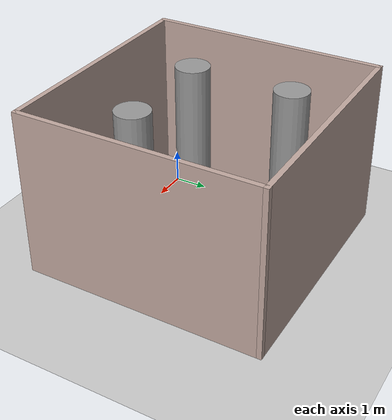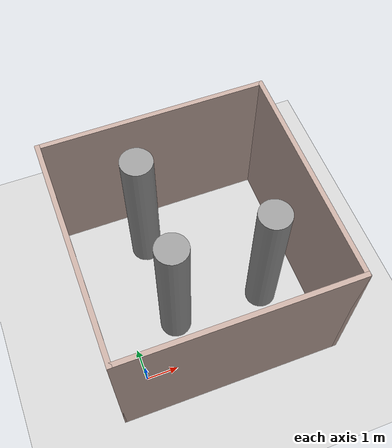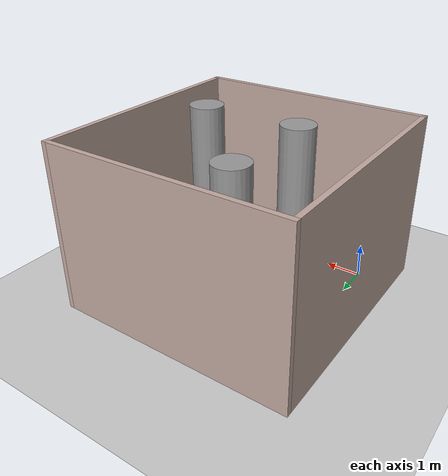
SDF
<sdf version="1.6">
 <world name="default">
  <model name="ground_plane">
   <static>1</static>
   <link name="link">
    <collision name="collision">
     <geometry><plane><normal>0 0 1</normal><size>100 100</size></plane></geometry>
     <surface>
      <contact><collide_bitmask>65535</collide_bitmask></contact>
      <friction><ode><mu>100</mu><mu2>50</mu2></ode></friction>
     </surface>
    </collision>
    <visual name="visual">
     <cast_shadows>0</cast_shadows>
     <geometry><plane><normal>0 0 1</normal><size>100 100</size></plane></geometry>
     <material>
      <script><uri>file://media/materials/scripts/gazebo.material</uri><name>Gazebo/Grey</name></script>
     </material>
    </visual>
   </link>
  </model>
  <light name="sun" type="directional">
   <pose>0 0 10 0 -0 0</pose>
   <diffuse>0.8 0.8 0.8 1</diffuse>
   <specular>0.2 0.2 0.2 1</specular>
   <attenuation>
    <range>1000</range>
    <constant>0.9</constant>
    <linear>0.01</linear>
    <quadratic>0.001</quadratic>
   </attenuation>
   <direction>-0.5 0.1 -0.9</direction>
  </light>
  <plugin name="ros_interface_plugin" filename="librotors_gazebo_ros_interface_plugin.so"/>
  <spherical_coordinates>
   <surface_model>EARTH_WGS84</surface_model>
   <latitude_deg>47.3667</latitude_deg>
   <longitude_deg>8.55</longitude_deg>
   <elevation>500</elevation>
   <heading_deg>0</heading_deg>
  </spherical_coordinates>
  <physics name="default_physics" default="0" type="ode">
   <ode>
    <solver>
     <type>quick</type>
     <iters>1000</iters>
     <sor>1.3</sor>
     <use_dynamic_moi_rescaling>0</use_dynamic_moi_rescaling>
    </solver>
    <constraints>
     <cfm>0</cfm>
     <erp>0.2</erp>
     <contact_max_correcting_vel>100</contact_max_correcting_vel>
     <contact_surface_layer>0.001</contact_surface_layer>
    </constraints>
   </ode>
   <max_step_size>0.001</max_step_size>
   <real_time_factor>1</real_time_factor>
   <real_time_update_rate>1000</real_time_update_rate>
  </physics>
  <gravity>0 0 -9.8</gravity>
  <magnetic_field>6e-06 2.3e-05 -4.2e-05</magnetic_field>
  <atmosphere type="adiabatic"/>
  <scene><ambient>0.4 0.4 0.4 1</ambient><background>0.7 0.7 0.7 1</background><shadows>1</shadows></scene>
  <audio><device>default</device></audio>
  <model name="arenaVolo">
   <pose>2.5 2.5 0 0 -0 0</pose>
   <link name="Wall_23">
    <collision name="Wall_23_Collision">
     <geometry><box><size>7.15 0.15 5</size></box></geometry>
     <pose>0 0 2.5 0 -0 0</pose>
    </collision>
    <visual name="Wall_23_Visual">
     <pose>0 0 2.5 0 -0 0</pose>
     <geometry><box><size>7.15 0.15 5</size></box></geometry>
     <material>
      <script><uri>file://media/materials/scripts/gazebo.material</uri><name>Gazebo/Grey</name></script>
      <ambient>0.760784 0.662745 0.627451 1</ambient>
     </material>
     <meta><layer>0</layer></meta>
    </visual>
    <pose>0 3.5 0 0 -0 3.14159</pose>
   </link>
   <link name="Wall_24">
    <collision name="Wall_24_Collision">
     <geometry><box><size>7.15 0.15 5</size></box></geometry>
     <pose>0 0 2.5 0 -0 0</pose>
    </collision>
    <visual name="Wall_24_Visual">
     <pose>0 0 2.5 0 -0 0</pose>
     <geometry><box><size>7.15 0.15 5</size></box></geometry>
     <material>
      <script><uri>file://media/materials/scripts/gazebo.material</uri><name>Gazebo/Grey</name></script>
      <ambient>0.760784 0.662745 0.627451 1</ambient>
     </material>
     <meta><layer>0</layer></meta>
    </visual>
    <pose>-3.5 -0 0 0 -0 -1.5708</pose>
   </link>
   <link name="Wall_25">
    <collision name="Wall_25_Collision">
     <geometry><box><size>7.15 0.15 5</size></box></geometry>
     <pose>0 0 2.5 0 -0 0</pose>
    </collision>
    <visual name="Wall_25_Visual">
     <pose>0 0 2.5 0 -0 0</pose>
     <geometry><box><size>7.15 0.15 5</size></box></geometry>
     <material>
      <script><uri>file://media/materials/scripts/gazebo.material</uri><name>Gazebo/Grey</name></script>
      <ambient>0.760784 0.662745 0.627451 1</ambient>
     </material>
     <meta><layer>0</layer></meta>
    </visual>
    <pose>0 -3.5 0 0 -0 0</pose>
   </link>
   <link name="Wall_26">
    <collision name="Wall_26_Collision">
     <geometry><box><size>7.15 0.15 5</size></box></geometry>
     <pose>0 0 2.5 0 -0 0</pose>
    </collision>
    <visual name="Wall_26_Visual">
     <pose>0 0 2.5 0 -0 0</pose>
     <geometry><box><size>7.15 0.15 5</size></box></geometry>
     <material>
      <script><uri>file://media/materials/scripts/gazebo.material</uri><name>Gazebo/Grey</name></script>
      <ambient>0.760784 0.662745 0.627451 1</ambient>
     </material>
     <meta><layer>0</layer></meta>
    </visual>
    <pose>3.5 -0 0 0 -0 1.5708</pose>
   </link>
   <static>1</static>
  </model>
  <model name="arena_cylinder">
   <link name="link_clone_clone">
    <inertial>
     <mass>1</mass>
     <inertia><ixx>0.145833</ixx><ixy>0</ixy><ixz>0</ixz><iyy>0.145833</iyy><iyz>0</iyz><izz>0.125</izz></inertia>
     <pose>0 0 2 0 -0 0</pose>
    </inertial>
    <pose>0.63189 0.124422 0 0 -0 0</pose>
    <visual name="visual">
     <geometry><cylinder><radius>0.5</radius><length>5</length></cylinder></geometry>
     <material>
      <script><name>Gazebo/Grey</name><uri>file://media/materials/scripts/gazebo.material</uri></script>
      <shader type="vertex"><normal_map>__default__</normal_map></shader>
      <ambient>0.3 0.3 0.3 1</ambient>
      <diffuse>0.7 0.7 0.7 1</diffuse>
      <specular>0.01 0.01 0.01 1</specular>
      <emissive>0 0 0 1</emissive>
     </material>
     <pose>0 0 2 0 -0 0</pose>
    </visual>
    <collision name="collision">
     <pose>0 0 2 0 -0 0</pose>
     <geometry><cylinder><radius>0.5</radius><length>5</length></cylinder></geometry>
     <surface>
      <friction>
       <ode><mu>1</mu><mu2>1</mu2><fdir1>0 0 0</fdir1><slip1>0</slip1><slip2>0</slip2></ode>
       <torsional>
        <coefficient>1</coefficient>
        <patch_radius>0</patch_radius>
        <surface_radius>0</surface_radius>
        <use_patch_radius>1</use_patch_radius>
        <ode><slip>0</slip></ode>
       </torsional>
      </friction>
      <bounce><restitution_coefficient>0</restitution_coefficient><threshold>1e+06</threshold></bounce>
      <contact>
       <collide_without_contact>0</collide_without_contact>
       <collide_without_contact_bitmask>1</collide_without_contact_bitmask>
       <collide_bitmask>1</collide_bitmask>
       <ode>
        <soft_cfm>0</soft_cfm>
        <soft_erp>0.2</soft_erp>
        <kp>1e+13</kp>
        <kd>1</kd>
        <max_vel>0.01</max_vel>
        <min_depth>0</min_depth>
       </ode>
       <bullet>
        <split_impulse>1</split_impulse>
        <split_impulse_penetration_threshold>-0.01</split_impulse_penetration_threshold>
        <soft_cfm>0</soft_cfm>
        <soft_erp>0.2</soft_erp>
        <kp>1e+13</kp>
        <kd>1</kd>
       </bullet>
      </contact>
     </surface>
    </collision>
   </link>
   <static>0</static>
   <pose>0.874756 4.38621 0.5 0 -0 0</pose>
  </model>
  <model name="arena_cylinder_1">
   <link name="link_clone_clone">
    <inertial>
     <mass>1</mass>
     <inertia><ixx>0.145833</ixx><ixy>0</ixy><ixz>0</ixz><iyy>0.145833</iyy><iyz>0</iyz><izz>0.125</izz></inertia>
     <pose>0 0 2 0 -0 0</pose>
    </inertial>
    <pose>-2.36399 -2.44511 0 0 -0 0</pose>
    <visual name="visual">
     <geometry><cylinder><radius>0.5</radius><length>5</length></cylinder></geometry>
     <material>
      <script><name>Gazebo/Grey</name><uri>file://media/materials/scripts/gazebo.material</uri></script>
      <shader type="vertex"><normal_map>__default__</normal_map></shader>
      <ambient>0.3 0.3 0.3 1</ambient>
      <diffuse>0.7 0.7 0.7 1</diffuse>
      <specular>0.01 0.01 0.01 1</specular>
      <emissive>0 0 0 1</emissive>
     </material>
     <pose>0 0 2 0 -0 0</pose>
    </visual>
    <collision name="collision">
     <pose>0 0 2 0 -0 0</pose>
     <geometry><cylinder><radius>0.5</radius><length>5</length></cylinder></geometry>
     <surface>
      <friction>
       <ode><mu>1</mu><mu2>1</mu2><fdir1>0 0 0</fdir1><slip1>0</slip1><slip2>0</slip2></ode>
       <torsional>
        <coefficient>1</coefficient>
        <patch_radius>0</patch_radius>
        <surface_radius>0</surface_radius>
        <use_patch_radius>1</use_patch_radius>
        <ode><slip>0</slip></ode>
       </torsional>
      </friction>
      <bounce><restitution_coefficient>0</restitution_coefficient><threshold>1e+06</threshold></bounce>
      <contact>
       <collide_without_contact>0</collide_without_contact>
       <collide_without_contact_bitmask>1</collide_without_contact_bitmask>
       <collide_bitmask>1</collide_bitmask>
       <ode>
        <soft_cfm>0</soft_cfm>
        <soft_erp>0.2</soft_erp>
        <kp>1e+13</kp>
        <kd>1</kd>
        <max_vel>0.01</max_vel>
        <min_depth>0</min_depth>
       </ode>
       <bullet>
        <split_impulse>1</split_impulse>
        <split_impulse_penetration_threshold>-0.01</split_impulse_penetration_threshold>
        <soft_cfm>0</soft_cfm>
        <soft_erp>0.2</soft_erp>
        <kp>1e+13</kp>
        <kd>1</kd>
       </bullet>
      </contact>
     </surface>
    </collision>
   </link>
   <static>0</static>
   <pose>3.86271 3.94109 0.499991 0 -0 0</pose>
  </model>
  <model name="arena_cylinder_0">
   <link name="link_clone_clone">
    <inertial>
     <mass>1</mass>
     <inertia><ixx>0.145833</ixx><ixy>0</ixy><ixz>0</ixz><iyy>0.145833</iyy><iyz>0</iyz><izz>0.125</izz></inertia>
     <pose>0 0 2 0 -0 0</pose>
    </inertial>
    <pose>0.636642 -0.105448 0 0 -0 0</pose>
    <visual name="visual">
     <geometry><cylinder><radius>0.5</radius><length>5</length></cylinder></geometry>
     <material>
      <script><name>Gazebo/Grey</name><uri>file://media/materials/scripts/gazebo.material</uri></script>
      <shader type="vertex"><normal_map>__default__</normal_map></shader>
      <ambient>0.3 0.3 0.3 1</ambient>
      <diffuse>0.7 0.7 0.7 1</diffuse>
      <specular>0.01 0.01 0.01 1</specular>
      <emissive>0 0 0 1</emissive>
     </material>
     <pose>0 0 2 0 -0 0</pose>
    </visual>
    <collision name="collision">
     <pose>0 0 2 0 -0 0</pose>
     <geometry><cylinder><radius>0.5</radius><length>5</length></cylinder></geometry>
     <surface>
      <friction>
       <ode><mu>1</mu><mu2>1</mu2><fdir1>0 0 0</fdir1><slip1>0</slip1><slip2>0</slip2></ode>
       <torsional>
        <coefficient>1</coefficient>
        <patch_radius>0</patch_radius>
        <surface_radius>0</surface_radius>
        <use_patch_radius>1</use_patch_radius>
        <ode><slip>0</slip></ode>
       </torsional>
      </friction>
      <bounce><restitution_coefficient>0</restitution_coefficient><threshold>1e+06</threshold></bounce>
      <contact>
       <collide_without_contact>0</collide_without_contact>
       <collide_without_contact_bitmask>1</collide_without_contact_bitmask>
       <collide_bitmask>1</collide_bitmask>
       <ode>
        <soft_cfm>0</soft_cfm>
        <soft_erp>0.2</soft_erp>
        <kp>1e+13</kp>
        <kd>1</kd>
        <max_vel>0.01</max_vel>
        <min_depth>0</min_depth>
       </ode>
       <bullet>
        <split_impulse>1</split_impulse>
        <split_impulse_penetration_threshold>-0.01</split_impulse_penetration_threshold>
        <soft_cfm>0</soft_cfm>
        <soft_erp>0.2</soft_erp>
        <kp>1e+13</kp>
        <kd>1</kd>
       </bullet>
      </contact>
     </surface>
    </collision>
   </link>
   <static>0</static>
   <pose>3.87132 1.61152 0.499991 0 -0 0</pose>
  </model>
 </world>
</sdf>
